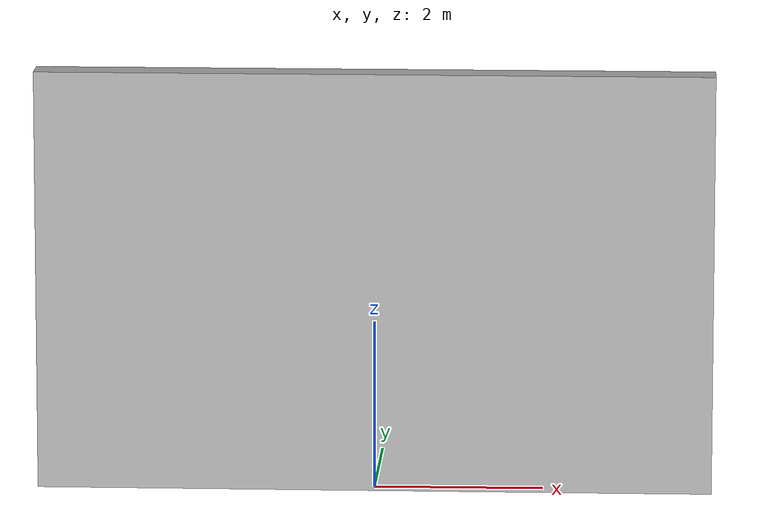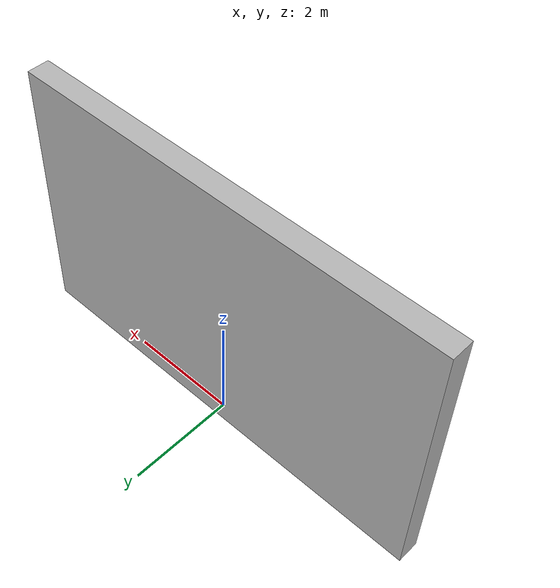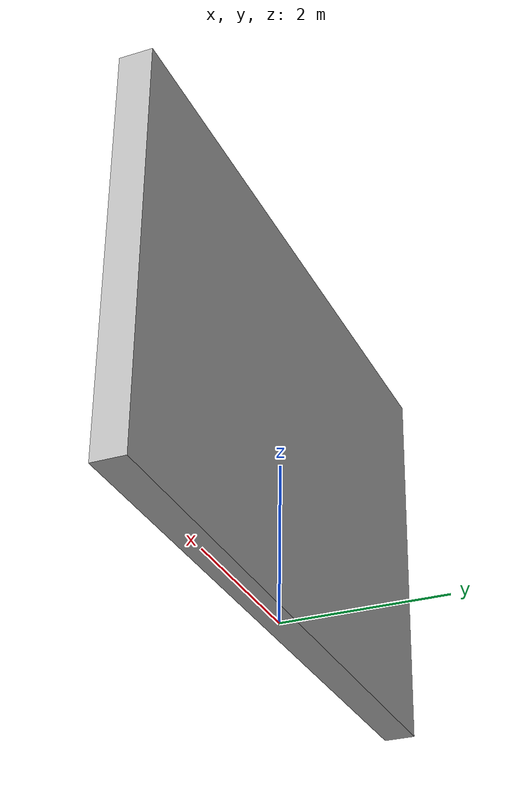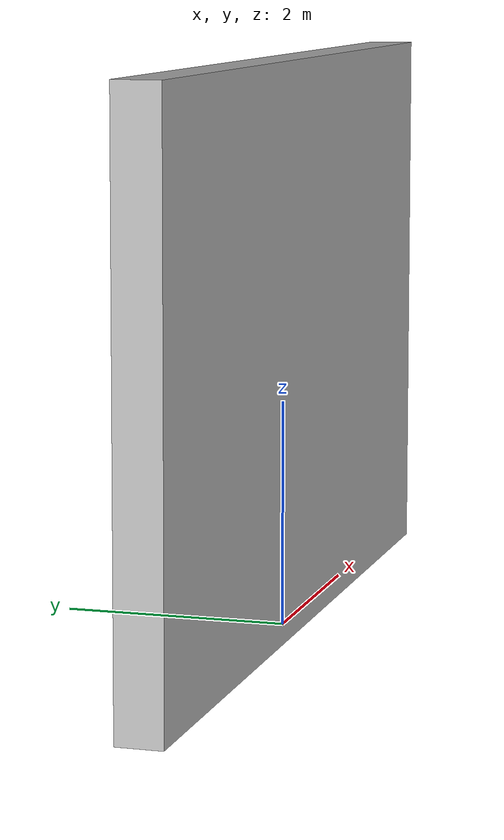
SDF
<?xml version="1.0" ?>
<sdf version="1.5">
  <model name="smaze_wall">
    <static>true</static>
    <link name="link">
      <pose>0 0 2.5 0 0 0</pose>
      <collision name="collision">
        <geometry>
          <box>
            <size>8 0.4 5</size>
          </box>
        </geometry>
        <surface>
          <friction>
            <ode>
              <mu>100.0</mu>
              <mu2>100.0</mu2>
            </ode>
          </friction>
        </surface>
      </collision>
      <visual name="visual">
        <geometry>
          <box>
            <size>8 0.4 5</size>
          </box>
        </geometry>
        <material>
          <script>
            <uri>model://smaze_wall/materials/scripts</uri>
            <uri>model://smaze_wall/materials/textures</uri>
            <name>vrc/smaze_wall</name>
          </script>
        </material>
      </visual>
    </link>
  </model>
</sdf>
